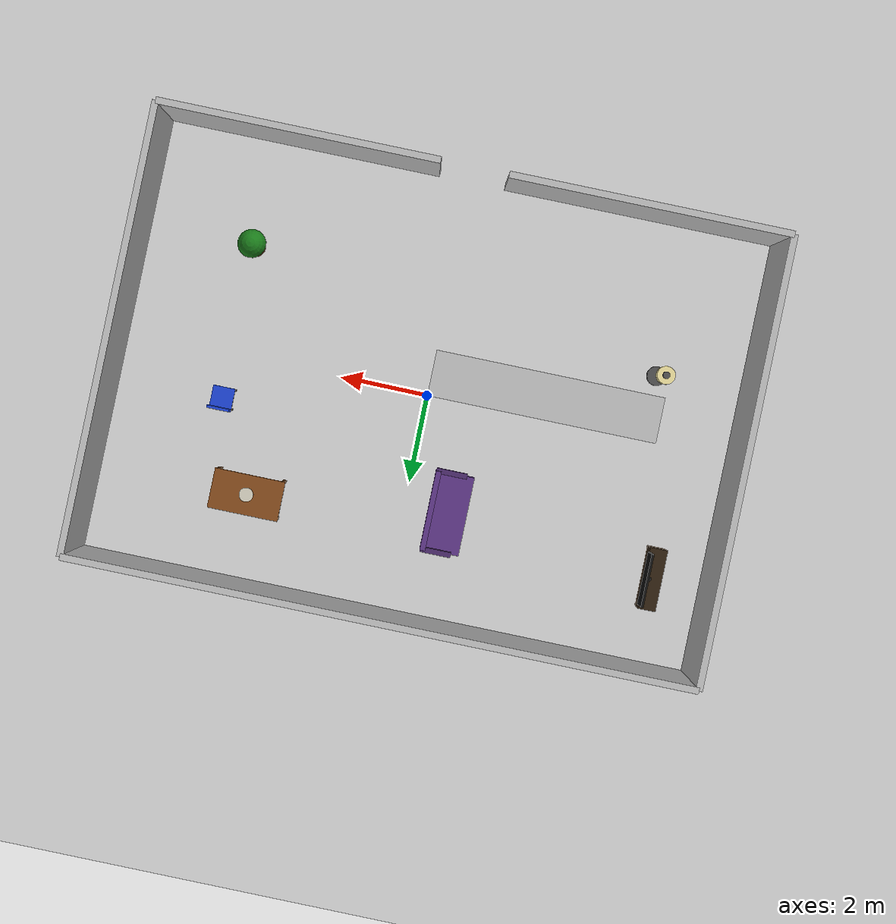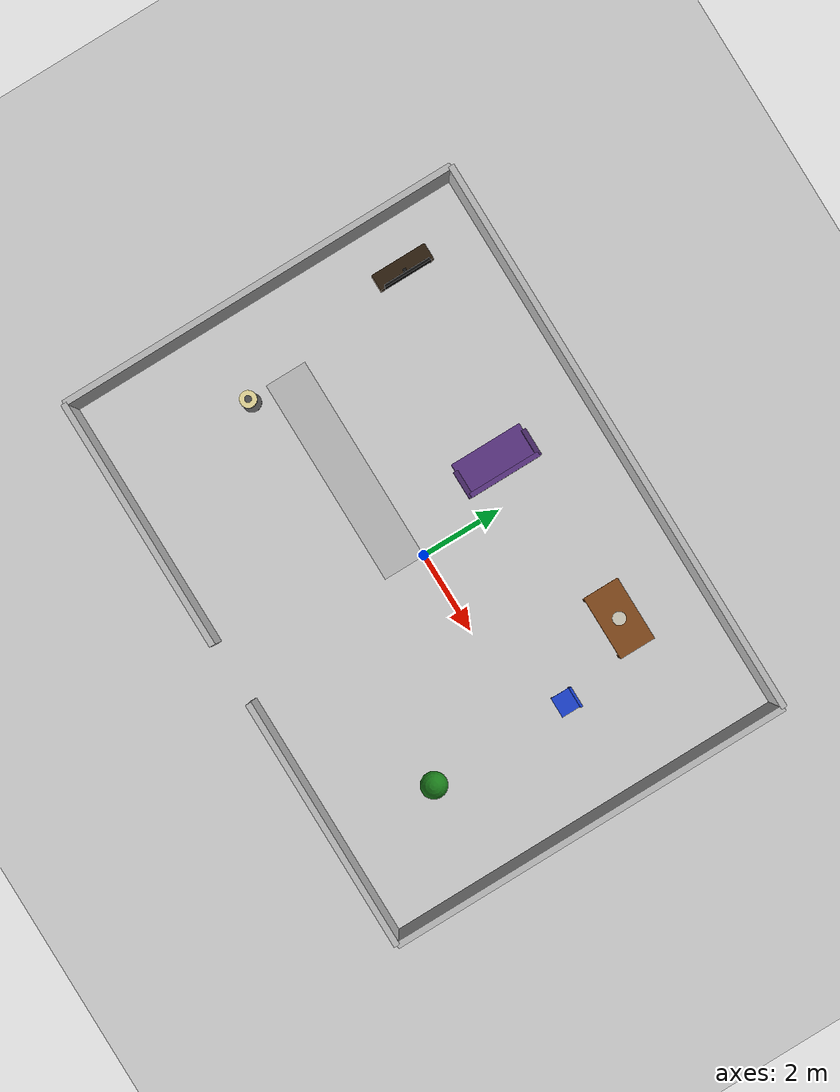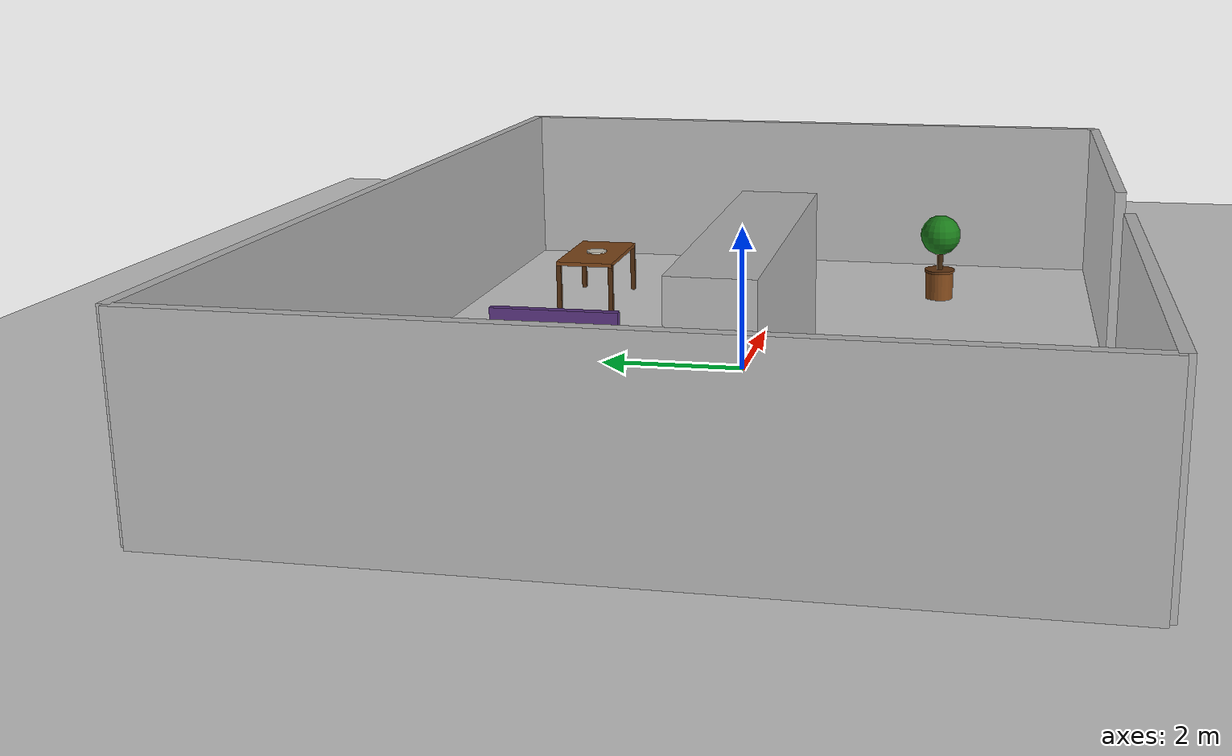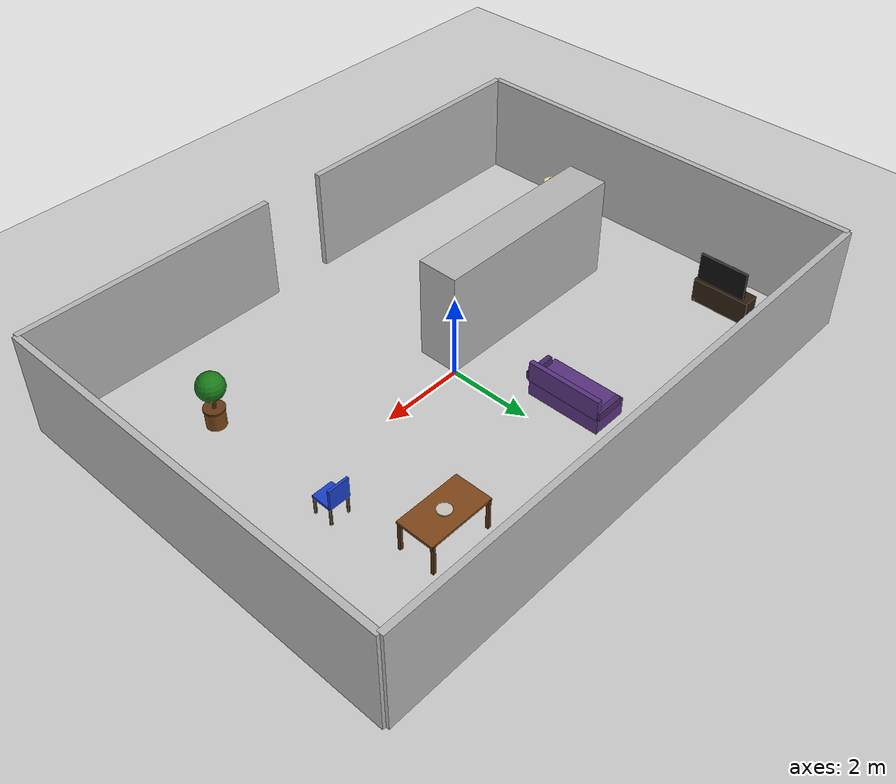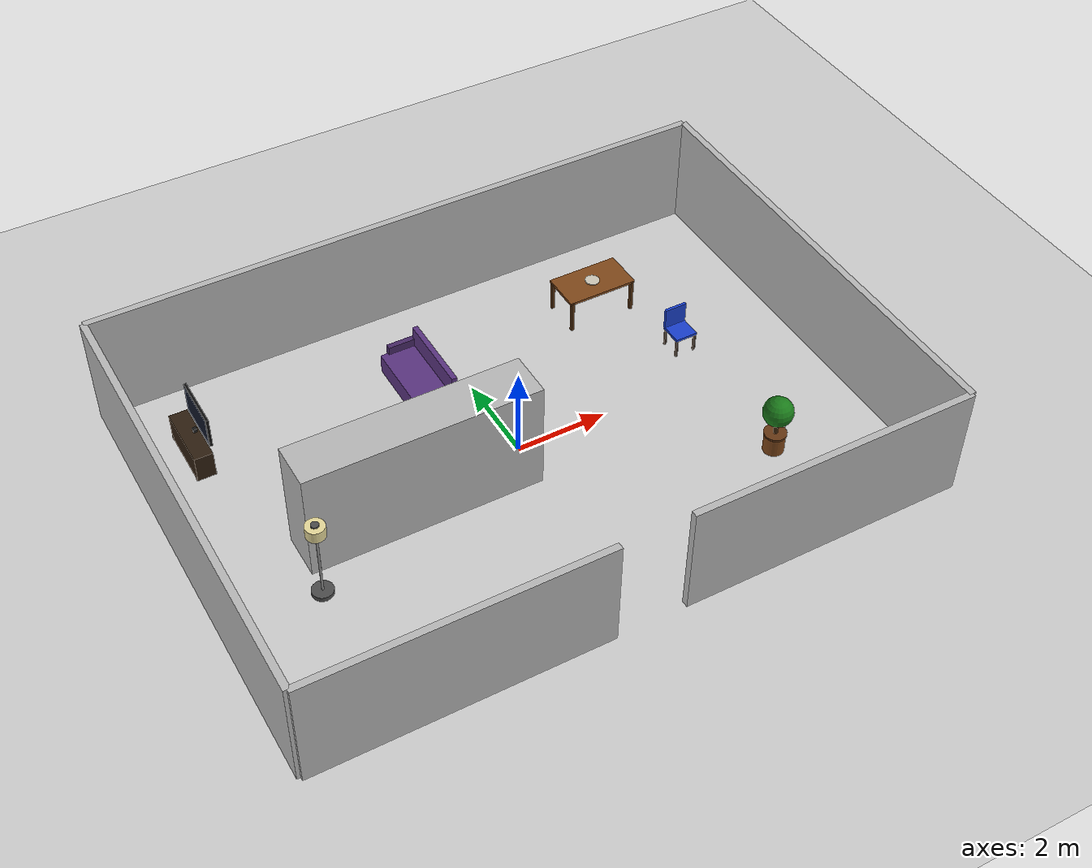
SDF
<?xml version="1.0"?>
<sdf version="1.7">
  <world name="uvc4_room">

    <!-- ========== GAZEBO ROS PLUGINS ========== -->
    <plugin name="gazebo_ros_state" filename="libgazebo_ros_state.so">
      <ros>
        <namespace>/gazebo</namespace>
      </ros>
      <update_rate>10.0</update_rate>
    </plugin>

    <!-- ========== LIGHTING ========== -->
    <light name="sun" type="directional">
      <cast_shadows>0</cast_shadows>
      <pose>0 0 10 0 0 0</pose>
      <diffuse>0.6 0.6 0.6 1</diffuse>
      <specular>0.1 0.1 0.1 1</specular>
      <attenuation>
        <range>1000</range>
        <constant>0.9</constant>
        <linear>0.01</linear>
        <quadratic>0.001</quadratic>
      </attenuation>
      <direction>0 0 -1</direction>
      <spot><inner_angle>0</inner_angle><outer_angle>0</outer_angle><falloff>0</falloff></spot>
    </light>

    <!-- ========== PHYSICS ========== -->
    <gravity>0 0 -9.8</gravity>
    <magnetic_field>6e-06 2.3e-05 -4.2e-05</magnetic_field>
    <atmosphere type="adiabatic"/>
    <physics type="ode">
      <max_step_size>0.001</max_step_size>
      <real_time_factor>1</real_time_factor>
      <real_time_update_rate>1000</real_time_update_rate>
    </physics>

    <!-- ========== SCENE ========== -->
    <scene>
      <ambient>0.4 0.4 0.4 1</ambient>
      <background>0.5 0.5 0.5 1</background>
      <shadows>0</shadows>
    </scene>

    <audio><device>default</device></audio>
    <wind/>
    <spherical_coordinates>
      <surface_model>EARTH_WGS84</surface_model>
      <latitude_deg>0</latitude_deg>
      <longitude_deg>0</longitude_deg>
      <elevation>0</elevation>
      <heading_deg>0</heading_deg>
    </spherical_coordinates>

    <!-- ========== GROUND PLANE ========== -->
    <model name="ground_plane">
      <static>1</static>
      <link name="link">
        <collision name="collision">
          <geometry><plane><normal>0 0 1</normal><size>100 100</size></plane></geometry>
          <surface>
            <friction><ode><mu>100</mu><mu2>50</mu2></ode><torsional><ode/></torsional></friction>
            <contact><ode/></contact>
            <bounce/>
          </surface>
          <max_contacts>10</max_contacts>
        </collision>
        <visual name="visual">
          <cast_shadows>0</cast_shadows>
          <geometry><plane><normal>0 0 1</normal><size>100 100</size></plane></geometry>
          <material><script><uri>file://media/materials/scripts/gazebo.material</uri><n>Gazebo/Grey</n></script></material>
        </visual>
        <self_collide>0</self_collide><enable_wind>0</enable_wind><kinematic>0</kinematic>
      </link>
    </model>

    <!-- ========== ROOM WALLS ========== -->
    <!-- Room: 14m wide (x: -7 to 7), 10m deep (y: -5 to 5), height 2.5m -->
    <!-- Entry: south-center (x: -0.75 to 0.75), y: -5                    -->
    <model name="uvc4_room_walls">
      <static>1</static>
      <pose>0 0 0 0 0 0</pose>

      <!-- South wall left: x -7 to -0.75 => length 6.25, center x=-3.875 -->
      <link name="Wall_south_left">
        <collision name="col"><geometry><box><size>6.25 0.15 2.5</size></box></geometry><pose>0 0 1.25 0 0 0</pose><max_contacts>10</max_contacts><surface><contact><ode/></contact><bounce/><friction><torsional><ode/></torsional><ode/></friction></surface></collision>
        <visual name="vis"><pose>0 0 1.25 0 0 0</pose><geometry><box><size>6.25 0.15 2.5</size></box></geometry><material><script><uri>file://media/materials/scripts/gazebo.material</uri><n>Gazebo/Grey</n></script></material></visual>
        <pose>-3.875 -5.0 0 0 0 0</pose>
        <self_collide>0</self_collide><enable_wind>0</enable_wind><kinematic>0</kinematic>
      </link>

      <!-- South wall right: x 0.75 to 7 => length 6.25, center x=3.875 -->
      <link name="Wall_south_right">
        <collision name="col"><geometry><box><size>6.25 0.15 2.5</size></box></geometry><pose>0 0 1.25 0 0 0</pose><max_contacts>10</max_contacts><surface><contact><ode/></contact><bounce/><friction><torsional><ode/></torsional><ode/></friction></surface></collision>
        <visual name="vis"><pose>0 0 1.25 0 0 0</pose><geometry><box><size>6.25 0.15 2.5</size></box></geometry><material><script><uri>file://media/materials/scripts/gazebo.material</uri><n>Gazebo/Grey</n></script></material></visual>
        <pose>3.875 -5.0 0 0 0 0</pose>
        <self_collide>0</self_collide><enable_wind>0</enable_wind><kinematic>0</kinematic>
      </link>

      <!-- North wall: full 14m -->
      <link name="Wall_north">
        <collision name="col"><geometry><box><size>14.0 0.15 2.5</size></box></geometry><pose>0 0 1.25 0 0 0</pose><max_contacts>10</max_contacts><surface><contact><ode/></contact><bounce/><friction><torsional><ode/></torsional><ode/></friction></surface></collision>
        <visual name="vis"><pose>0 0 1.25 0 0 0</pose><geometry><box><size>14.0 0.15 2.5</size></box></geometry><material><script><uri>file://media/materials/scripts/gazebo.material</uri><n>Gazebo/Grey</n></script></material></visual>
        <pose>0 5.0 0 0 0 0</pose>
        <self_collide>0</self_collide><enable_wind>0</enable_wind><kinematic>0</kinematic>
      </link>

      <!-- West wall: full 10m -->
      <link name="Wall_west">
        <collision name="col"><geometry><box><size>0.15 10.0 2.5</size></box></geometry><pose>0 0 1.25 0 0 0</pose><max_contacts>10</max_contacts><surface><contact><ode/></contact><bounce/><friction><torsional><ode/></torsional><ode/></friction></surface></collision>
        <visual name="vis"><pose>0 0 1.25 0 0 0</pose><geometry><box><size>0.15 10.0 2.5</size></box></geometry><material><script><uri>file://media/materials/scripts/gazebo.material</uri><n>Gazebo/Grey</n></script></material></visual>
        <pose>-7.0 0 0 0 0 0</pose>
        <self_collide>0</self_collide><enable_wind>0</enable_wind><kinematic>0</kinematic>
      </link>

      <!-- East wall: full 10m -->
      <link name="Wall_east">
        <collision name="col"><geometry><box><size>0.15 10.0 2.5</size></box></geometry><pose>0 0 1.25 0 0 0</pose><max_contacts>10</max_contacts><surface><contact><ode/></contact><bounce/><friction><torsional><ode/></torsional><ode/></friction></surface></collision>
        <visual name="vis"><pose>0 0 1.25 0 0 0</pose><geometry><box><size>0.15 10.0 2.5</size></box></geometry><material><script><uri>file://media/materials/scripts/gazebo.material</uri><n>Gazebo/Grey</n></script></material></visual>
        <pose>7.0 0 0 0 0 0</pose>
        <self_collide>0</self_collide><enable_wind>0</enable_wind><kinematic>0</kinematic>
      </link>

    </model>

    <!-- ========== CORRIDOR (left-center, wall-height, dark grey) ========== -->
    <!-- center: (-2.5, -0.5), size: 5.0 x 1.0 x 2.5                        -->
    <model name="corridor">
      <static>1</static>
      <pose>-2.5 -0.5 0 0 0 0</pose>
      <link name="link">
        <collision name="col"><geometry><box><size>5.0 1.0 2.5</size></box></geometry><pose>0 0 1.25 0 0 0</pose><max_contacts>10</max_contacts><surface><contact><ode/></contact><bounce/><friction><torsional><ode/></torsional><ode/></friction></surface></collision>
        <visual name="vis"><pose>0 0 1.25 0 0 0</pose><geometry><box><size>5.0 1.0 2.5</size></box></geometry><material><script><uri>file://media/materials/scripts/gazebo.material</uri><n>Gazebo/DarkGrey</n></script></material></visual>
        <self_collide>0</self_collide><enable_wind>0</enable_wind><kinematic>0</kinematic>
      </link>
    </model>

    <!-- ========== TV STAND + TV (top-left, x=-5.8 y=3.0, rotated 135deg left) ========== -->
    <model name="tv_stand">
      <static>1</static>
      <pose>-5.8 3.0 0 0 0 1.571</pose>
      <link name="link">
        <!-- Stand body -->
        <visual name="body_vis"><pose>0 0 0.30 0 0 0</pose><geometry><box><size>1.40 0.40 0.60</size></box></geometry><material><ambient>0.18 0.12 0.06 1</ambient><diffuse>0.18 0.12 0.06 1</diffuse><specular>0.05 0.03 0.02 1</specular></material></visual>
        <collision name="body_col"><pose>0 0 0.30 0 0 0</pose><geometry><box><size>1.40 0.40 0.60</size></box></geometry><max_contacts>10</max_contacts></collision>
        <!-- Stand legs (4 small feet) -->
        <visual name="leg1_vis"><pose>-0.65 -0.18 0.03 0 0 0</pose><geometry><box><size>0.06 0.06 0.06</size></box></geometry><material><ambient>0.12 0.08 0.04 1</ambient><diffuse>0.12 0.08 0.04 1</diffuse></material></visual>
        <visual name="leg2_vis"><pose>0.65 -0.18 0.03 0 0 0</pose><geometry><box><size>0.06 0.06 0.06</size></box></geometry><material><ambient>0.12 0.08 0.04 1</ambient><diffuse>0.12 0.08 0.04 1</diffuse></material></visual>
        <visual name="leg3_vis"><pose>-0.65 0.18 0.03 0 0 0</pose><geometry><box><size>0.06 0.06 0.06</size></box></geometry><material><ambient>0.12 0.08 0.04 1</ambient><diffuse>0.12 0.08 0.04 1</diffuse></material></visual>
        <visual name="leg4_vis"><pose>0.65 0.18 0.03 0 0 0</pose><geometry><box><size>0.06 0.06 0.06</size></box></geometry><material><ambient>0.12 0.08 0.04 1</ambient><diffuse>0.12 0.08 0.04 1</diffuse></material></visual>
        <!-- TV screen (flat panel) -->
        <visual name="tv_vis"><pose>0 -0.22 1.05 0 0 0</pose><geometry><box><size>1.20 0.06 0.70</size></box></geometry><material><ambient>0.05 0.05 0.05 1</ambient><diffuse>0.05 0.05 0.05 1</diffuse><specular>0.20 0.20 0.20 1</specular></material></visual>
        <collision name="tv_col"><pose>0 -0.22 1.05 0 0 0</pose><geometry><box><size>1.20 0.06 0.70</size></box></geometry><max_contacts>10</max_contacts></collision>
        <!-- TV screen display (dark blue-grey) -->
        <visual name="screen_vis"><pose>0 -0.19 1.05 0 0 0</pose><geometry><box><size>1.10 0.01 0.62</size></box></geometry><material><ambient>0.05 0.08 0.15 1</ambient><diffuse>0.05 0.08 0.15 1</diffuse></material></visual>
        <!-- TV neck -->
        <visual name="neck_vis"><pose>0 -0.10 0.68 0 0 0</pose><geometry><box><size>0.08 0.08 0.08</size></box></geometry><material><ambient>0.10 0.10 0.10 1</ambient><diffuse>0.10 0.10 0.10 1</diffuse></material></visual>
        <self_collide>0</self_collide><enable_wind>0</enable_wind><kinematic>0</kinematic>
      </link>
    </model>

    <!-- ========== SOFA (center-left, x=-1.0 y=2.5, rotated 135deg right) ========== -->
    <!-- Large sofa with good clearance on all sides                                  -->
    <model name="sofa">
      <static>1</static>
      <pose>-1.0 2.5 0 0 0 -1.571</pose>
      <link name="link">
        <!-- Seat base -->
        <visual name="seat_vis"><pose>0 0 0.22 0 0 0</pose><geometry><box><size>1.80 0.85 0.44</size></box></geometry><material><ambient>0.35 0.20 0.50 1</ambient><diffuse>0.35 0.20 0.50 1</diffuse><specular>0.05 0.03 0.07 1</specular></material></visual>
        <collision name="seat_col"><pose>0 0 0.22 0 0 0</pose><geometry><box><size>1.80 0.85 0.44</size></box></geometry><max_contacts>10</max_contacts></collision>
        <!-- Backrest -->
        <visual name="back_vis"><pose>0 0.40 0.65 0 0 0</pose><geometry><box><size>1.80 0.12 0.50</size></box></geometry><material><ambient>0.35 0.20 0.50 1</ambient><diffuse>0.35 0.20 0.50 1</diffuse><specular>0.05 0.03 0.07 1</specular></material></visual>
        <collision name="back_col"><pose>0 0.40 0.65 0 0 0</pose><geometry><box><size>1.80 0.12 0.50</size></box></geometry><max_contacts>10</max_contacts></collision>
        <!-- Left armrest -->
        <visual name="arm_l_vis"><pose>-0.90 0.10 0.52 0 0 0</pose><geometry><box><size>0.12 0.70 0.20</size></box></geometry><material><ambient>0.28 0.16 0.40 1</ambient><diffuse>0.28 0.16 0.40 1</diffuse></material></visual>
        <collision name="arm_l_col"><pose>-0.90 0.10 0.52 0 0 0</pose><geometry><box><size>0.12 0.70 0.20</size></box></geometry><max_contacts>10</max_contacts></collision>
        <!-- Right armrest -->
        <visual name="arm_r_vis"><pose>0.90 0.10 0.52 0 0 0</pose><geometry><box><size>0.12 0.70 0.20</size></box></geometry><material><ambient>0.28 0.16 0.40 1</ambient><diffuse>0.28 0.16 0.40 1</diffuse></material></visual>
        <collision name="arm_r_col"><pose>0.90 0.10 0.52 0 0 0</pose><geometry><box><size>0.12 0.70 0.20</size></box></geometry><max_contacts>10</max_contacts></collision>
        <!-- Sofa feet -->
        <visual name="foot1_vis"><pose>-0.82 -0.38 0.05 0 0 0</pose><geometry><box><size>0.08 0.08 0.10</size></box></geometry><material><ambient>0.15 0.10 0.05 1</ambient><diffuse>0.15 0.10 0.05 1</diffuse></material></visual>
        <visual name="foot2_vis"><pose>0.82 -0.38 0.05 0 0 0</pose><geometry><box><size>0.08 0.08 0.10</size></box></geometry><material><ambient>0.15 0.10 0.05 1</ambient><diffuse>0.15 0.10 0.05 1</diffuse></material></visual>
        <visual name="foot3_vis"><pose>-0.82 0.38 0.05 0 0 0</pose><geometry><box><size>0.08 0.08 0.10</size></box></geometry><material><ambient>0.15 0.10 0.05 1</ambient><diffuse>0.15 0.10 0.05 1</diffuse></material></visual>
        <visual name="foot4_vis"><pose>0.82 0.38 0.05 0 0 0</pose><geometry><box><size>0.08 0.08 0.10</size></box></geometry><material><ambient>0.15 0.10 0.05 1</ambient><diffuse>0.15 0.10 0.05 1</diffuse></material></visual>
        <self_collide>0</self_collide><enable_wind>0</enable_wind><kinematic>0</kinematic>
      </link>
    </model>

    <!-- ========== FLOOR LAMP (bottom-left, x=-5.0 y=-1.5) ========== -->
    <model name="floor_lamp">
      <static>1</static>
      <pose>-5.0 -1.5 0 0 0 0</pose>
      <link name="link">
        <!-- Base disc -->
        <visual name="base_vis"><pose>0 0 0.05 0 0 0</pose><geometry><cylinder><radius>0.22</radius><length>0.10</length></cylinder></geometry><material><ambient>0.30 0.30 0.30 1</ambient><diffuse>0.30 0.30 0.30 1</diffuse><specular>0.20 0.20 0.20 1</specular></material></visual>
        <collision name="base_col"><pose>0 0 0.05 0 0 0</pose><geometry><cylinder><radius>0.22</radius><length>0.10</length></cylinder></geometry><max_contacts>10</max_contacts></collision>
        <!-- Pole -->
        <visual name="pole_vis"><pose>0 0 0.90 0 0 0</pose><geometry><cylinder><radius>0.025</radius><length>1.60</length></cylinder></geometry><material><ambient>0.55 0.55 0.55 1</ambient><diffuse>0.55 0.55 0.55 1</diffuse><specular>0.30 0.30 0.30 1</specular></material></visual>
        <collision name="pole_col"><pose>0 0 0.90 0 0 0</pose><geometry><cylinder><radius>0.025</radius><length>1.60</length></cylinder></geometry><max_contacts>10</max_contacts></collision>
        <!-- Lamp shade (cone approximated as cylinder) -->
        <visual name="shade_vis"><pose>0 0 1.75 0 0 0</pose><geometry><cylinder><radius>0.20</radius><length>0.25</length></cylinder></geometry><material><ambient>0.90 0.85 0.60 1</ambient><diffuse>0.90 0.85 0.60 1</diffuse><specular>0.10 0.10 0.05 1</specular></material></visual>
        <collision name="shade_col"><pose>0 0 1.75 0 0 0</pose><geometry><cylinder><radius>0.20</radius><length>0.25</length></cylinder></geometry><max_contacts>10</max_contacts></collision>
        <!-- Lamp top cap -->
        <visual name="cap_vis"><pose>0 0 1.89 0 0 0</pose><geometry><cylinder><radius>0.08</radius><length>0.04</length></cylinder></geometry><material><ambient>0.30 0.30 0.30 1</ambient><diffuse>0.30 0.30 0.30 1</diffuse></material></visual>
        <self_collide>0</self_collide><enable_wind>0</enable_wind><kinematic>0</kinematic>
      </link>
    </model>

    <!-- ========== DINING TABLE (top-right, x=3.5 y=3.0) ========== -->
    <model name="dining_table">
      <static>1</static>
      <pose>3.5 3.0 0 0 0 0</pose>
      <link name="link">
        <!-- Tabletop -->
        <visual name="top_vis"><pose>0 0 0.75 0 0 0</pose><geometry><box><size>1.60 0.90 0.06</size></box></geometry><material><ambient>0.50 0.28 0.10 1</ambient><diffuse>0.50 0.28 0.10 1</diffuse><specular>0.18 0.12 0.05 1</specular></material></visual>
        <collision name="top_col"><pose>0 0 0.75 0 0 0</pose><geometry><box><size>1.60 0.90 0.06</size></box></geometry><max_contacts>10</max_contacts></collision>
        <!-- Leg FL -->
        <visual name="leg_fl_vis"><pose>-0.74 -0.42 0.375 0 0 0</pose><geometry><box><size>0.07 0.07 0.75</size></box></geometry><material><ambient>0.32 0.18 0.06 1</ambient><diffuse>0.32 0.18 0.06 1</diffuse></material></visual>
        <collision name="leg_fl_col"><pose>-0.74 -0.42 0.375 0 0 0</pose><geometry><box><size>0.07 0.07 0.75</size></box></geometry><max_contacts>10</max_contacts></collision>
        <!-- Leg FR -->
        <visual name="leg_fr_vis"><pose>0.74 -0.42 0.375 0 0 0</pose><geometry><box><size>0.07 0.07 0.75</size></box></geometry><material><ambient>0.32 0.18 0.06 1</ambient><diffuse>0.32 0.18 0.06 1</diffuse></material></visual>
        <collision name="leg_fr_col"><pose>0.74 -0.42 0.375 0 0 0</pose><geometry><box><size>0.07 0.07 0.75</size></box></geometry><max_contacts>10</max_contacts></collision>
        <!-- Leg RL -->
        <visual name="leg_rl_vis"><pose>-0.74 0.42 0.375 0 0 0</pose><geometry><box><size>0.07 0.07 0.75</size></box></geometry><material><ambient>0.32 0.18 0.06 1</ambient><diffuse>0.32 0.18 0.06 1</diffuse></material></visual>
        <collision name="leg_rl_col"><pose>-0.74 0.42 0.375 0 0 0</pose><geometry><box><size>0.07 0.07 0.75</size></box></geometry><max_contacts>10</max_contacts></collision>
        <!-- Leg RR -->
        <visual name="leg_rr_vis"><pose>0.74 0.42 0.375 0 0 0</pose><geometry><box><size>0.07 0.07 0.75</size></box></geometry><material><ambient>0.32 0.18 0.06 1</ambient><diffuse>0.32 0.18 0.06 1</diffuse></material></visual>
        <collision name="leg_rr_col"><pose>0.74 0.42 0.375 0 0 0</pose><geometry><box><size>0.07 0.07 0.75</size></box></geometry><max_contacts>10</max_contacts></collision>
        <self_collide>0</self_collide><enable_wind>0</enable_wind><kinematic>0</kinematic>
      </link>
    </model>

    <!-- ========== DINING TABLE PLATE (center on tabletop at z=0.79) ========== -->
    <!-- Plate - center -->
    <model name="plate_2">
      <static>1</static>
      <pose>3.5 3.0 0.79 0 0 0</pose>
      <link name="link">
        <visual name="vis"><pose>0 0 0 0 0 0</pose><geometry><cylinder><radius>0.16</radius><length>0.02</length></cylinder></geometry><material><ambient>0.92 0.90 0.85 1</ambient><diffuse>0.92 0.90 0.85 1</diffuse><specular>0.30 0.30 0.28 1</specular></material></visual>
        <collision name="col"><pose>0 0 0 0 0 0</pose><geometry><cylinder><radius>0.16</radius><length>0.02</length></cylinder></geometry><max_contacts>10</max_contacts></collision>
        <visual name="rim_vis"><pose>0 0 0.01 0 0 0</pose><geometry><cylinder><radius>0.16</radius><length>0.005</length></cylinder></geometry><material><ambient>0.80 0.78 0.72 1</ambient><diffuse>0.80 0.78 0.72 1</diffuse></material></visual>
        <self_collide>0</self_collide><enable_wind>0</enable_wind><kinematic>0</kinematic>
      </link>
    </model>
    <model name="chair_1">
      <static>1</static>
      <pose>4.5 1.0 0 0 0 0</pose>
      <link name="link">
        <!-- Seat -->
        <visual name="seat_vis"><pose>0 0 0.45 0 0 0</pose><geometry><box><size>0.50 0.50 0.06</size></box></geometry><material><ambient>0.10 0.25 0.80 1</ambient><diffuse>0.10 0.25 0.80 1</diffuse><specular>0.05 0.05 0.15 1</specular></material></visual>
        <collision name="seat_col"><pose>0 0 0.45 0 0 0</pose><geometry><box><size>0.50 0.50 0.06</size></box></geometry><max_contacts>10</max_contacts></collision>
        <!-- Backrest -->
        <visual name="back_vis"><pose>0 0.24 0.70 0 0 0</pose><geometry><box><size>0.50 0.06 0.50</size></box></geometry><material><ambient>0.10 0.25 0.80 1</ambient><diffuse>0.10 0.25 0.80 1</diffuse><specular>0.05 0.05 0.15 1</specular></material></visual>
        <collision name="back_col"><pose>0 0.24 0.70 0 0 0</pose><geometry><box><size>0.50 0.06 0.50</size></box></geometry><max_contacts>10</max_contacts></collision>
        <!-- Legs -->
        <visual name="leg1_vis"><pose>-0.22 -0.22 0.225 0 0 0</pose><geometry><box><size>0.05 0.05 0.45</size></box></geometry><material><ambient>0.15 0.10 0.05 1</ambient><diffuse>0.15 0.10 0.05 1</diffuse></material></visual>
        <collision name="leg1_col"><pose>-0.22 -0.22 0.225 0 0 0</pose><geometry><box><size>0.05 0.05 0.45</size></box></geometry><max_contacts>10</max_contacts></collision>
        <visual name="leg2_vis"><pose>0.22 -0.22 0.225 0 0 0</pose><geometry><box><size>0.05 0.05 0.45</size></box></geometry><material><ambient>0.15 0.10 0.05 1</ambient><diffuse>0.15 0.10 0.05 1</diffuse></material></visual>
        <collision name="leg2_col"><pose>0.22 -0.22 0.225 0 0 0</pose><geometry><box><size>0.05 0.05 0.45</size></box></geometry><max_contacts>10</max_contacts></collision>
        <visual name="leg3_vis"><pose>-0.22 0.22 0.225 0 0 0</pose><geometry><box><size>0.05 0.05 0.45</size></box></geometry><material><ambient>0.15 0.10 0.05 1</ambient><diffuse>0.15 0.10 0.05 1</diffuse></material></visual>
        <collision name="leg3_col"><pose>-0.22 0.22 0.225 0 0 0</pose><geometry><box><size>0.05 0.05 0.45</size></box></geometry><max_contacts>10</max_contacts></collision>
        <visual name="leg4_vis"><pose>0.22 0.22 0.225 0 0 0</pose><geometry><box><size>0.05 0.05 0.45</size></box></geometry><material><ambient>0.15 0.10 0.05 1</ambient><diffuse>0.15 0.10 0.05 1</diffuse></material></visual>
        <collision name="leg4_col"><pose>0.22 0.22 0.225 0 0 0</pose><geometry><box><size>0.05 0.05 0.45</size></box></geometry><max_contacts>10</max_contacts></collision>
        <self_collide>0</self_collide><enable_wind>0</enable_wind><kinematic>0</kinematic>
      </link>
    </model>

    <!-- ========== POTTED PLANT (bottom-right, x=4.5 y=-2.5) ========== -->
    <model name="potted_plant">
      <static>1</static>
      <pose>4.5 -2.5 0 0 0 0</pose>
      <link name="link">
        <!-- Pot -->
        <visual name="pot_vis"><pose>0 0 0.22 0 0 0</pose><geometry><cylinder><radius>0.22</radius><length>0.44</length></cylinder></geometry><material><ambient>0.50 0.28 0.10 1</ambient><diffuse>0.50 0.28 0.10 1</diffuse></material></visual>
        <collision name="pot_col"><pose>0 0 0.22 0 0 0</pose><geometry><cylinder><radius>0.22</radius><length>0.44</length></cylinder></geometry><max_contacts>10</max_contacts></collision>
        <!-- Pot rim -->
        <visual name="rim_vis"><pose>0 0 0.46 0 0 0</pose><geometry><cylinder><radius>0.24</radius><length>0.04</length></cylinder></geometry><material><ambient>0.40 0.22 0.08 1</ambient><diffuse>0.40 0.22 0.08 1</diffuse></material></visual>
        <!-- Trunk -->
        <visual name="trunk_vis"><pose>0 0 0.65 0 0 0</pose><geometry><cylinder><radius>0.05</radius><length>0.35</length></cylinder></geometry><material><ambient>0.25 0.15 0.05 1</ambient><diffuse>0.25 0.15 0.05 1</diffuse></material></visual>
        <collision name="trunk_col"><pose>0 0 0.65 0 0 0</pose><geometry><cylinder><radius>0.05</radius><length>0.35</length></cylinder></geometry><max_contacts>10</max_contacts></collision>
        <!-- Foliage -->
        <visual name="foliage_vis"><pose>0 0 1.05 0 0 0</pose><geometry><sphere><radius>0.32</radius></sphere></geometry><material><ambient>0.10 0.48 0.10 1</ambient><diffuse>0.10 0.48 0.10 1</diffuse></material></visual>
        <collision name="foliage_col"><pose>0 0 1.05 0 0 0</pose><geometry><sphere><radius>0.32</radius></sphere></geometry><max_contacts>10</max_contacts></collision>
        <self_collide>0</self_collide><enable_wind>0</enable_wind><kinematic>0</kinematic>
      </link>
    </model>

    <!-- ========== GUI CAMERA ========== -->
    <gui fullscreen="0">
      <camera name="user_camera">
        <pose>0 -16 18 0 0.785 1.5708</pose>
        <view_controller>orbit</view_controller>
        <projection_type>perspective</projection_type>
      </camera>
    </gui>

  </world>
</sdf>
